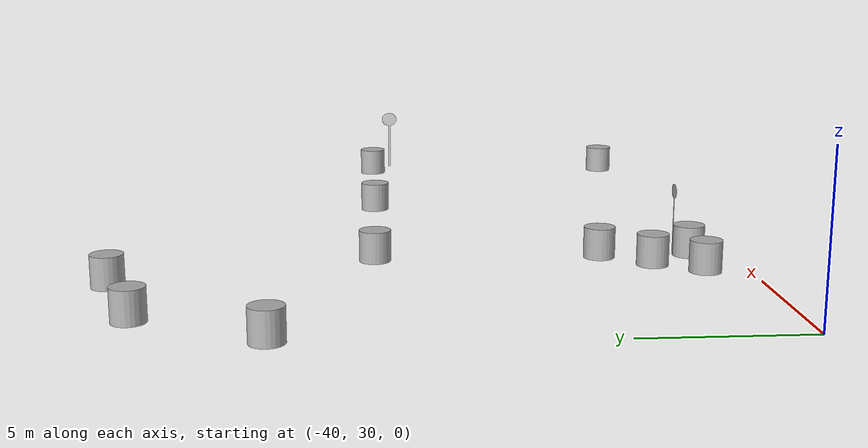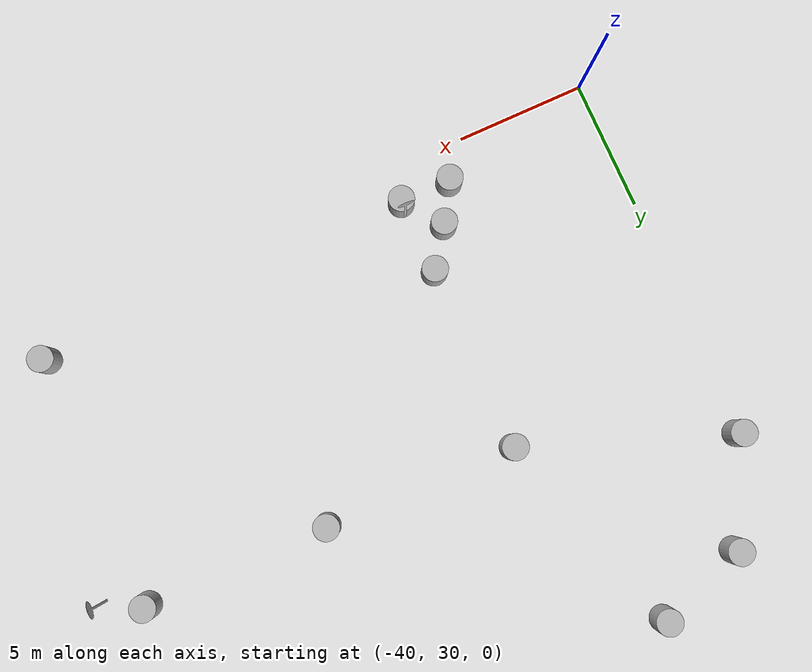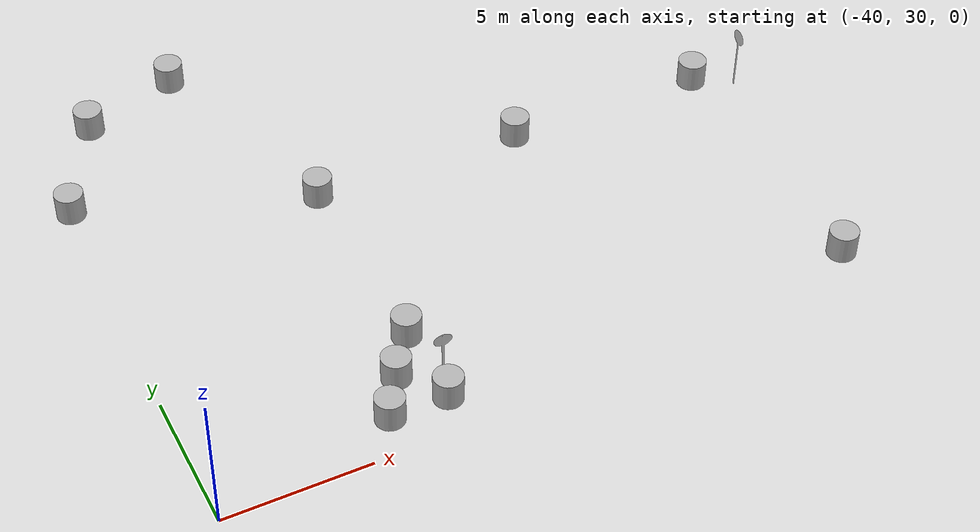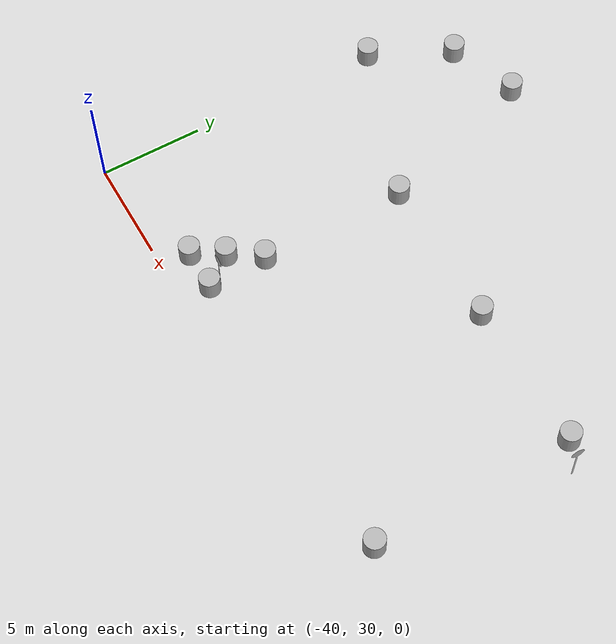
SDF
<sdf version="1.7">
 <world name="serit">
  <model name="girilmez">
   <static>true</static>
   <pose>-31.8019 31.8937 0 0 0 3.1256</pose>
   <link name="link6">
    <visual name="visual">
     <geometry><mesh><uri>/model://tabelalar/meshes/girilmez.dae</uri><scale>1 1 1</scale></mesh></geometry>
    </visual>
   </link>
  </model>
  <model name="ileri_sol">
   <static>true</static>
   <pose>-16.0518 40.5145 0 0 0 1.5295</pose>
   <link name="link10">
    <visual name="visual">
     <geometry><mesh><uri>model://tabelalar/meshes/ilerisol.dae</uri><scale>1 1 1</scale></mesh></geometry>
    </visual>
   </link>
  </model>
  <model name="cylinder_5">
   <pose>-17.3787 41.2742 0.499999 0 0 0</pose>
   <link name="cylinder_link">
    <inertial>
     <inertia>
      <ixx>0.14580000000000001</ixx>
      <ixy>0</ixy>
      <ixz>0</ixz>
      <iyy>0.14580000000000001</iyy>
      <iyz>0</iyz>
      <izz>0.125</izz>
     </inertia>
     <mass>1</mass>
    </inertial>
    <collision name="cylinder_collision">
     <geometry><cylinder><radius>0.5</radius><length>1</length></cylinder></geometry>
    </collision>
    <visual name="cylinder_visual">
     <geometry><cylinder><radius>0.5</radius><length>1</length></cylinder></geometry>
     <material>
      <ambient>0.3 0.3 0.3 1</ambient>
      <diffuse>0.7 0.7 0.7 1</diffuse>
      <specular>1 1 1 1</specular>
     </material>
    </visual>
   </link>
   <static>false</static>
  </model>
  <model name="cylinder_6">
   <pose>-17.3886 31.5031 0.499999 -0 0 0</pose>
   <link name="cylinder_link">
    <inertial>
     <inertia>
      <ixx>0.14580000000000001</ixx>
      <ixy>0</ixy>
      <ixz>0</ixz>
      <iyy>0.14580000000000001</iyy>
      <iyz>0</iyz>
      <izz>0.125</izz>
     </inertia>
     <mass>1</mass>
    </inertial>
    <collision name="cylinder_collision">
     <geometry><cylinder><radius>0.5</radius><length>1</length></cylinder></geometry>
    </collision>
    <visual name="cylinder_visual">
     <geometry><cylinder><radius>0.5</radius><length>1</length></cylinder></geometry>
     <material>
      <ambient>0.3 0.3 0.3 1</ambient>
      <diffuse>0.7 0.7 0.7 1</diffuse>
      <specular>1 1 1 1</specular>
     </material>
    </visual>
   </link>
   <static>false</static>
  </model>
  <model name="cylinder_7">
   <pose>-24.4995 41.3196 0.499999 0 0 -0</pose>
   <link name="cylinder_link">
    <inertial>
     <inertia>
      <ixx>0.14580000000000001</ixx>
      <ixy>0</ixy>
      <ixz>0</ixz>
      <iyy>0.14580000000000001</iyy>
      <iyz>0</iyz>
      <izz>0.125</izz>
     </inertia>
     <mass>1</mass>
    </inertial>
    <collision name="cylinder_collision">
     <geometry><cylinder><radius>0.5</radius><length>1</length></cylinder></geometry>
    </collision>
    <visual name="cylinder_visual">
     <geometry><cylinder><radius>0.5</radius><length>1</length></cylinder></geometry>
     <material>
      <ambient>0.3 0.3 0.3 1</ambient>
      <diffuse>0.7 0.7 0.7 1</diffuse>
      <specular>1 1 1 1</specular>
     </material>
    </visual>
   </link>
   <static>false</static>
  </model>
  <model name="cylinder_8">
   <pose>-31.9164 41.4634 0.499999 -0 0 0</pose>
   <link name="cylinder_link">
    <inertial>
     <inertia>
      <ixx>0.14580000000000001</ixx>
      <ixy>0</ixy>
      <ixz>0</ixz>
      <iyy>0.14580000000000001</iyy>
      <iyz>0</iyz>
      <izz>0.125</izz>
     </inertia>
     <mass>1</mass>
    </inertial>
    <collision name="cylinder_collision">
     <geometry><cylinder><radius>0.5</radius><length>1</length></cylinder></geometry>
    </collision>
    <visual name="cylinder_visual">
     <geometry><cylinder><radius>0.5</radius><length>1</length></cylinder></geometry>
     <material>
      <ambient>0.3 0.3 0.3 1</ambient>
      <diffuse>0.7 0.7 0.7 1</diffuse>
      <specular>1 1 1 1</specular>
     </material>
    </visual>
   </link>
   <static>false</static>
  </model>
  <model name="cylinder_9">
   <pose>-31.8709 31.4062 0.499999 0 -0 0</pose>
   <link name="cylinder_link">
    <inertial>
     <inertia>
      <ixx>0.14580000000000001</ixx>
      <ixy>0</ixy>
      <ixz>0</ixz>
      <iyy>0.14580000000000001</iyy>
      <iyz>0</iyz>
      <izz>0.125</izz>
     </inertia>
     <mass>1</mass>
    </inertial>
    <collision name="cylinder_collision">
     <geometry><cylinder><radius>0.5</radius><length>1</length></cylinder></geometry>
    </collision>
    <visual name="cylinder_visual">
     <geometry><cylinder><radius>0.5</radius><length>1</length></cylinder></geometry>
     <material>
      <ambient>0.3 0.3 0.3 1</ambient>
      <diffuse>0.7 0.7 0.7 1</diffuse>
      <specular>1 1 1 1</specular>
     </material>
    </visual>
   </link>
   <static>false</static>
  </model>
  <model name="cylinder_51">
   <pose>-34.3419 49.3374 0.499999 -0 0 0</pose>
   <link name="cylinder_link">
    <inertial>
     <inertia>
      <ixx>0.14580000000000001</ixx>
      <ixy>0</ixy>
      <ixz>0</ixz>
      <iyy>0.14580000000000001</iyy>
      <iyz>0</iyz>
      <izz>0.125</izz>
     </inertia>
     <mass>1</mass>
    </inertial>
    <collision name="cylinder_collision">
     <geometry><cylinder><radius>0.5</radius><length>1</length></cylinder></geometry>
    </collision>
    <visual name="cylinder_visual">
     <geometry><cylinder><radius>0.5</radius><length>1</length></cylinder></geometry>
     <material>
      <ambient>0.3 0.3 0.3 1</ambient>
      <diffuse>0.7 0.7 0.7 1</diffuse>
      <specular>1 1 1 1</specular>
     </material>
    </visual>
   </link>
   <static>false</static>
  </model>
  <model name="cylinder_52">
   <pose>-37.7537 48.1556 0.499999 -0 0 0</pose>
   <link name="cylinder_link">
    <inertial>
     <inertia>
      <ixx>0.14580000000000001</ixx>
      <ixy>0</ixy>
      <ixz>0</ixz>
      <iyy>0.14580000000000001</iyy>
      <iyz>0</iyz>
      <izz>0.125</izz>
     </inertia>
     <mass>1</mass>
    </inertial>
    <collision name="cylinder_collision">
     <geometry><cylinder><radius>0.5</radius><length>1</length></cylinder></geometry>
    </collision>
    <visual name="cylinder_visual">
     <geometry><cylinder><radius>0.5</radius><length>1</length></cylinder></geometry>
     <material>
      <ambient>0.3 0.3 0.3 1</ambient>
      <diffuse>0.7 0.7 0.7 1</diffuse>
      <specular>1 1 1 1</specular>
     </material>
    </visual>
   </link>
   <static>false</static>
  </model>
  <model name="cylinder_53">
   <pose>-39.708 44.3589 0.499999 0 -0 0</pose>
   <link name="cylinder_link">
    <inertial>
     <inertia>
      <ixx>0.14580000000000001</ixx>
      <ixy>0</ixy>
      <ixz>0</ixz>
      <iyy>0.14580000000000001</iyy>
      <iyz>0</iyz>
      <izz>0.125</izz>
     </inertia>
     <mass>1</mass>
    </inertial>
    <collision name="cylinder_collision">
     <geometry><cylinder><radius>0.5</radius><length>1</length></cylinder></geometry>
    </collision>
    <visual name="cylinder_visual">
     <geometry><cylinder><radius>0.5</radius><length>1</length></cylinder></geometry>
     <material>
      <ambient>0.3 0.3 0.3 1</ambient>
      <diffuse>0.7 0.7 0.7 1</diffuse>
      <specular>1 1 1 1</specular>
     </material>
    </visual>
   </link>
   <static>false</static>
  </model>
  <model name="cylinder_70">
   <pose>-31.9367 34.3154 0.499999 -0 0 0</pose>
   <link name="cylinder_link">
    <inertial>
     <inertia>
      <ixx>0.14580000000000001</ixx>
      <ixy>0</ixy>
      <ixz>0</ixz>
      <iyy>0.14580000000000001</iyy>
      <iyz>0</iyz>
      <izz>0.125</izz>
     </inertia>
     <mass>1</mass>
    </inertial>
    <collision name="cylinder_collision">
     <geometry><cylinder><radius>0.5</radius><length>1</length></cylinder></geometry>
    </collision>
    <visual name="cylinder_visual">
     <geometry><cylinder><radius>0.5</radius><length>1</length></cylinder></geometry>
     <material>
      <ambient>0.3 0.3 0.3 1</ambient>
      <diffuse>0.7 0.7 0.7 1</diffuse>
      <specular>1 1 1 1</specular>
     </material>
    </visual>
   </link>
   <static>false</static>
  </model>
  <model name="cylinder_72">
   <pose>-32.9777 32.8347 0.499999 -0 0 -0</pose>
   <link name="cylinder_link">
    <inertial>
     <inertia>
      <ixx>0.14580000000000001</ixx>
      <ixy>0</ixy>
      <ixz>0</ixz>
      <iyy>0.14580000000000001</iyy>
      <iyz>0</iyz>
      <izz>0.125</izz>
     </inertia>
     <mass>1</mass>
    </inertial>
    <collision name="cylinder_collision">
     <geometry><cylinder><radius>0.5</radius><length>1</length></cylinder></geometry>
    </collision>
    <visual name="cylinder_visual">
     <geometry><cylinder><radius>0.5</radius><length>1</length></cylinder></geometry>
     <material>
      <ambient>0.3 0.3 0.3 1</ambient>
      <diffuse>0.7 0.7 0.7 1</diffuse>
      <specular>1 1 1 1</specular>
     </material>
    </visual>
   </link>
   <static>false</static>
  </model>
  <model name="cylinder_73">
   <pose>-33.8493 31.4003 0.499993 1e-06 1e-06 0.004768</pose>
   <link name="cylinder_link">
    <inertial>
     <inertia>
      <ixx>0.14580000000000001</ixx>
      <ixy>0</ixy>
      <ixz>0</ixz>
      <iyy>0.14580000000000001</iyy>
      <iyz>0</iyz>
      <izz>0.125</izz>
     </inertia>
     <mass>1</mass>
    </inertial>
    <collision name="cylinder_collision">
     <geometry><cylinder><radius>0.5</radius><length>1</length></cylinder></geometry>
    </collision>
    <visual name="cylinder_visual">
     <geometry><cylinder><radius>0.5</radius><length>1</length></cylinder></geometry>
     <material>
      <ambient>0.3 0.3 0.3 1</ambient>
      <diffuse>0.7 0.7 0.7 1</diffuse>
      <specular>1 1 1 1</specular>
     </material>
    </visual>
   </link>
   <static>false</static>
  </model>
 </world>
</sdf>
